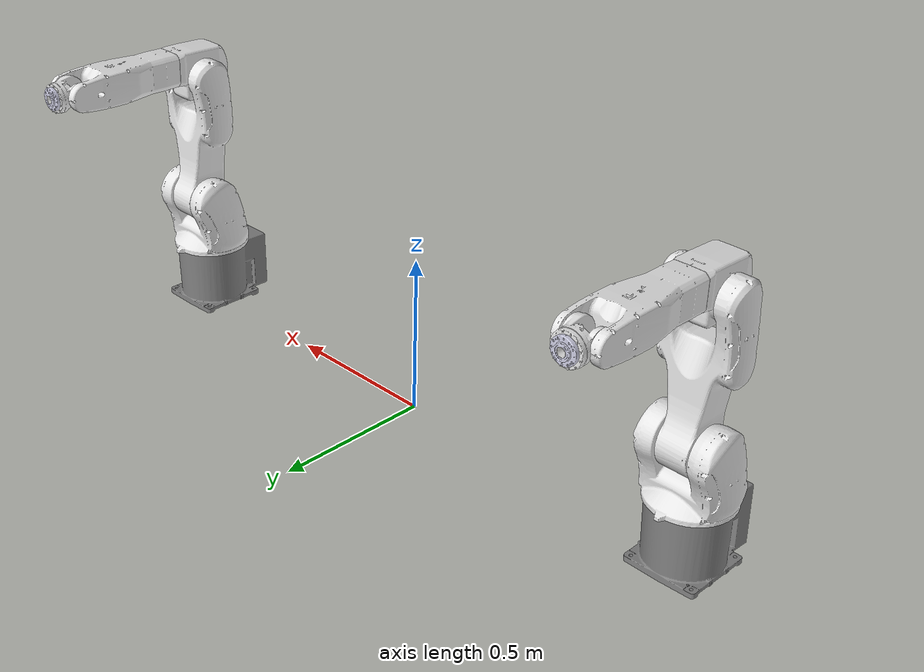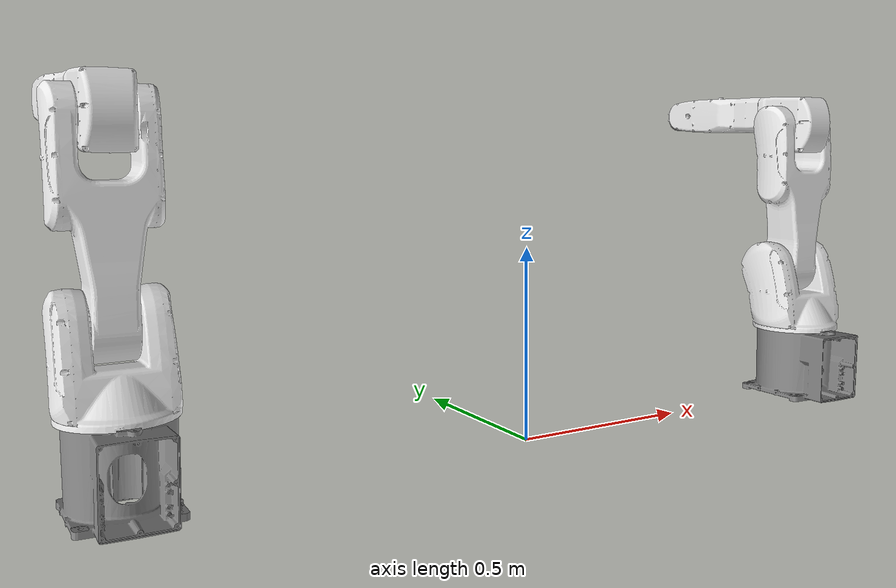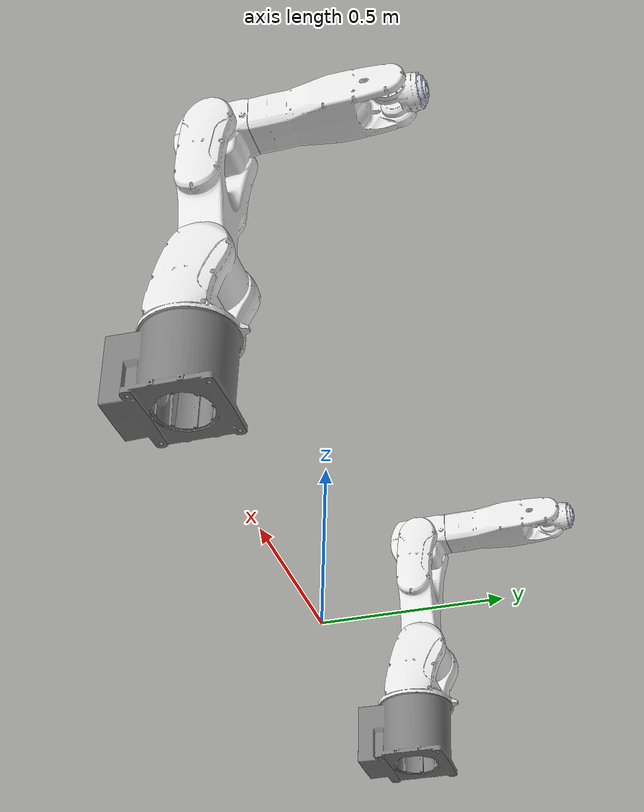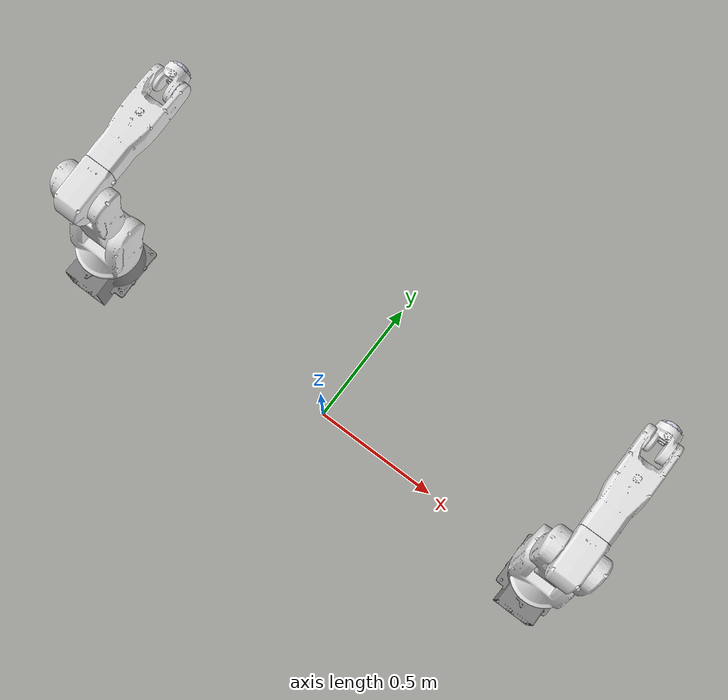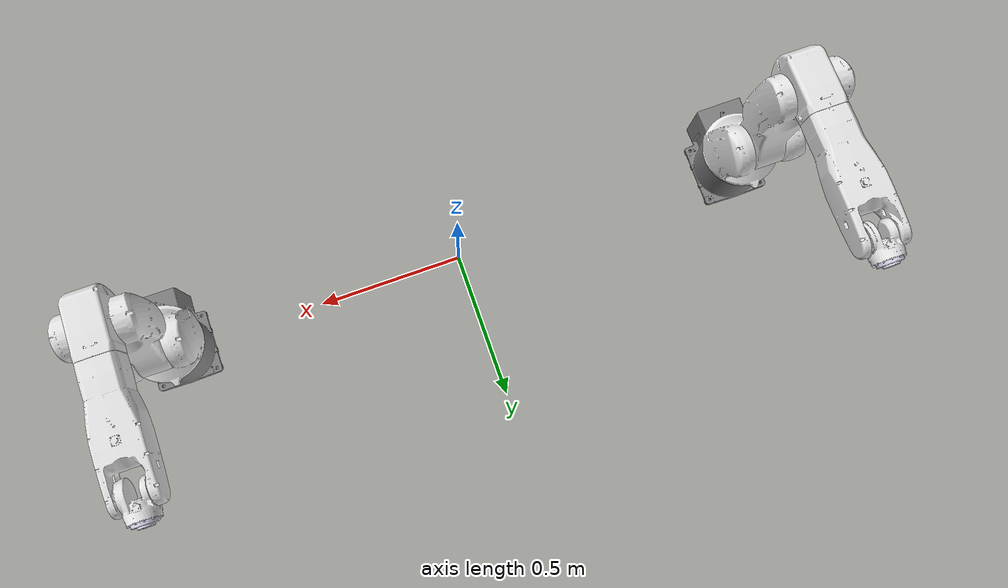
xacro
<?xml version="1.0"?>
<robot xmlns:xacro="http://www.ros.org/wiki/xacro">

    <xacro:include filename="$(find er7robot_arm_description)/urdf/er7.xacro"/>
    <xacro:estun_robot prefix="camera_" parent_link="base_link" attach_xyz="-1.0 0 0" attach_rpy="0 0 1.57"/>
    <xacro:estun_robot prefix="laser_" parent_link="base_link" attach_xyz="1.0 0 0" attach_rpy="0 0 1.57"/>
    <link name="base_link"/>
            <!--launch controller manager to manage joint_state_boardcaster and my_arm_group_controller-->
            <!--declare where to get robot_description-->

</robot>

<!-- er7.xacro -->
<robot xmlns:xacro="http://www.ros.org/wiki/xacro">
  <xacro:property name="M_PI" value="3.1415926535897931" />
    <!-- 材料定义 -->
  <material name="white">
    <color rgba="0.9 0.9 0.9 1.0"/>
  </material>
  <material name="tool">
    <color rgba="0.8 0.8 0.88 1"/>
  </material>
  <material name="grey">
    <color rgba="0.5 0.5 0.5 1.0"/>
  </material>
  <xacro:macro name="estun_robot" params=" prefix parent_link attach_xyz attach_rpy">

    <!-- 全局参数 -->

    <xacro:property name="pkg" value="er7robot_arm_description" />
    <xacro:property name="mesh_dir" value="package://er7robot_arm_description/meshes"/>

    <!-- 关节参数 -->

    <xacro:property name="max_effort" value="87"/>
    <xacro:property name="max_velocity" value="2.1750"/>
    <!-- 连杆模板 -->
    <xacro:macro name="er7_link" params="name mesh material *origin *inertial">
      <link name="${prefix}${name}">
        <xacro:insert_block name="inertial"/>
        <visual>
          <xacro:insert_block name="origin"/>
          <geometry>
            <mesh filename="${mesh_dir}/${mesh}.stl"/>
          </geometry>
          <material name="${material}"/>
        </visual>
        <collision>
          <xacro:insert_block name="origin"/>
          <geometry>
            <mesh filename="${mesh_dir}/${mesh}.stl"/>
          </geometry>
        </collision>
      </link>
    </xacro:macro>

    <!-- 旋转关节模板 -->
    <xacro:macro name="revolute_joint" params="name parent child xyz rpy axis lower upper">
      <joint name="${prefix}${name}" type="revolute">
        <origin xyz="${xyz}" rpy="${rpy}"/>
        <parent link="${prefix}${parent}"/>
        <child link="${prefix}${child}"/>
        <axis xyz="${axis}"/>
        <limit effort="${max_effort}"
              lower="${lower}"
              upper="${upper}"
              velocity="${max_velocity}"/>
      </joint>
    </xacro:macro>

    <!-- 固定关节模板 -->
    <xacro:macro name="fixed_joint" params="name parent child xyz rpy">
      <joint name="${prefix}${name}" type="fixed">
        <origin xyz="${xyz}" rpy="${rpy}"/>
        <parent link="${parent}"/>
        <child link="${prefix}${child}"/>
      </joint>
    </xacro:macro>

    <!-- ================== 机器人结构 ================== -->
    <!-- 连接到父链接的关节 -->
    <xacro:fixed_joint name="base_joint"
                      parent="${parent_link}"
                      child="base_link"
                      xyz="${attach_xyz}"
                      rpy="${attach_rpy}"/>

    <!-- Base Link -->
    <xacro:er7_link name="base_link" mesh="base_link" material="grey">
      <origin xyz="0 0 0" rpy="0 0 0"/>
      <inertial>
        <origin xyz="-0.026793 -9.7595E-05 0.10245" rpy="0 0 0"/>
        <mass value="10.535"/>
        <inertia ixx="0.070003" ixy="1.3701E-05" ixz="-0.00096429"
                iyy="0.095771" iyz="5.4877E-06" izz="0.088893"/>
      </inertial>
    </xacro:er7_link>

    <!-- 关节1 -->
    <xacro:er7_link name="link_1" mesh="link_1" material="white">
      <origin xyz="0 0 0" rpy="0 0 0"/>
      <inertial>
        <origin xyz="0.011138 0.010138 0.29517" rpy="0 0 0"/>
        <mass value="4.2086"/>
        <inertia ixx="0.030054" ixy="-0.00068137" ixz="-0.0043902"
                iyy="0.032613" iyz="-0.0021869" izz="0.021837"/>
      </inertial>
    </xacro:er7_link>

    <xacro:revolute_joint name="joint_1"
                        parent="base_link"
                        child="link_1"
                        xyz="0 0 0"
                        rpy="0 0 0"
                        axis="0 0 -1"
                        lower="-2.96706"
                        upper="2.96706"/>

    <!-- 关节2 -->
    <xacro:er7_link name="link_2" mesh="link_2" material="white">
      <origin xyz="0 0 0" rpy="0 0 0"/>
      <inertial>
        <origin xyz="0.143 -0.012788 0.0012609" rpy="0 0 0"/>
        <mass value="4.7189"/>
        <inertia ixx="0.013281" ixy="0.0027249" ixz="-0.002609"
                iyy="0.087452" iyz="3.0723E-05" izz="0.088272"/>
      </inertial>
    </xacro:er7_link>

    <xacro:revolute_joint name="joint_2"
                        parent="link_1"
                        child="link_2"
                        xyz="0.04 0 0.386"
                        rpy="-1.5685 -1.5708 0"
                        axis="0 0 1"
                        lower="-1.39626"
                        upper="2.35619"/>

    <!-- 关节3 -->
    <xacro:er7_link name="link_3" mesh="link_3" material="white">
      <origin xyz="0 0 0" rpy="0 0 0"/>
      <inertial>
        <origin xyz="0.018787 -0.024183 -0.005861" rpy="0 0 0"/>
        <mass value="1.2995"/>
        <inertia ixx="0.0046013" ixy="0.00046754" ixz="-0.0001967"
                iyy="0.0041193" iyz="0.00021785" izz="0.0053624"/>
      </inertial>
    </xacro:er7_link>

    <xacro:revolute_joint name="joint_3"
                        parent="link_2"
                        child="link_3"
                        xyz="0.42995 -0.0065869 -1.5401E-05"
                        rpy="0 0 1.5708"
                        axis="0 0 1"
                        lower="-3.31613"
                        upper="1.13446"/>

    <!-- 关节4 -->
    <xacro:er7_link name="link_4" mesh="link_4" material="white">
      <origin xyz="0 0 0" rpy="0 0 0"/>
      <inertial>
        <origin xyz="0.00030569 2.6731E-05 0.15173" rpy="0 0 0"/>
        <mass value="3.6259"/>
        <inertia ixx="0.013688" ixy="-2.77E-07" ixz="-0.00013787"
                iyy="0.013904" iyz="-5.1113E-06" izz="0.006922"/>
      </inertial>
    </xacro:er7_link>

    <xacro:revolute_joint name="joint_4"
                        parent="link_3"
                        child="link_4"
                        xyz="0.094433 -0.041321 -7.8123E-05"
                        rpy="-1.5708 -1.5708 -1.5847"
                        axis="0 0 -1"
                        lower="-3.31613"
                        upper="3.31613"/>

    <!-- 关节5 -->
    <xacro:er7_link name="link_5" mesh="link_5" material="white">
      <origin xyz="0 0 0" rpy="0 0 0"/>
      <inertial>
        <origin xyz="0.022976 -0.00016218 -0.0068804" rpy="0 0 0"/>
        <mass value="0.49222"/>
        <inertia ixx="0.00055117" ixy="1.7465E-06" ixz="-4.3677E-05"
                iyy="0.00056711" iyz="4.2405E-07" izz="0.00051329"/>
      </inertial>
    </xacro:er7_link>

    <xacro:revolute_joint name="joint_5"
                        parent="link_4"
                        child="link_5"
                        xyz="0.0011172 0 0.35"
                        rpy="-1.5708 -1.5522 -1.5679"
                        axis="-8.7448E-05 0 1"
                        lower="-2.09440"
                        upper="2.09440"/>

    <!-- 关节6 -->
    <xacro:er7_link name="link_6" mesh="link_6" material="tool">
      <origin xyz="0 0 0" rpy="0 0 0"/>
      <inertial>
        <origin xyz="5.908E-06 -5.9257E-05 -0.01015" rpy="0 0 0"/>
        <mass value="0.039799"/>
        <inertia ixx="1.3325E-05" ixy="-2.2942E-10" ixz="8.8798E-10"
                iyy="1.3251E-05" iyz="-2.1481E-09" izz="2.5479E-05"/>
      </inertial>
    </xacro:er7_link>

    <xacro:revolute_joint name="joint_6"
                        parent="link_5"
                        child="link_6"
                        xyz="0.085996 0 -0.0011172"
                        rpy="1.5708 0.0 1.5708"
                        axis="0 0 -1"
                        lower="-6.28319"
                        upper="6.28319"/>
    <!-- ================== 控制接口 ================== -->

  </xacro:macro>
</robot>
